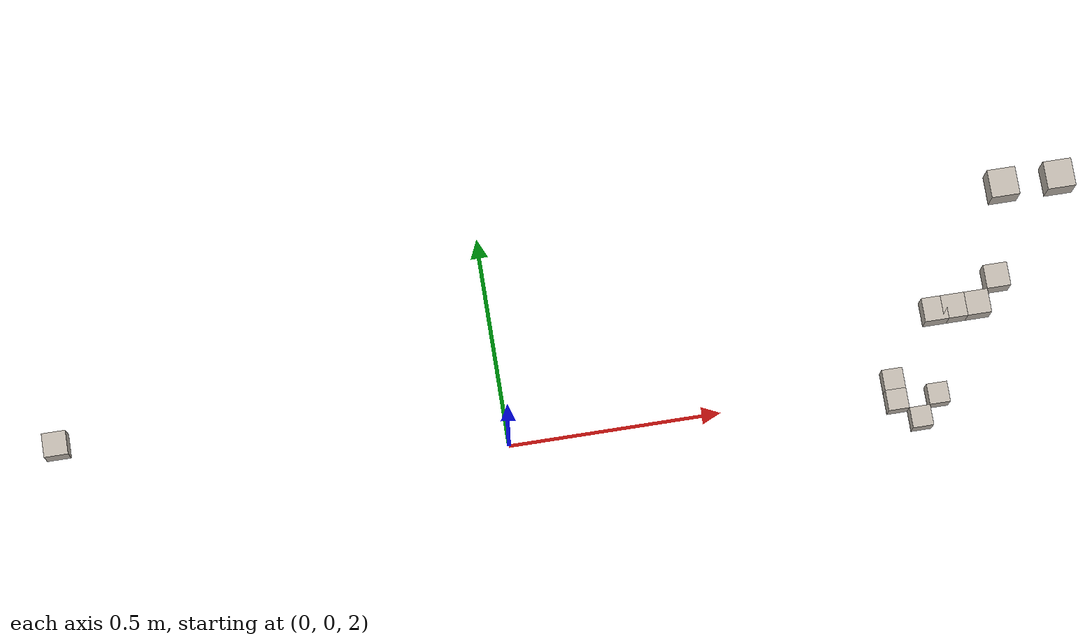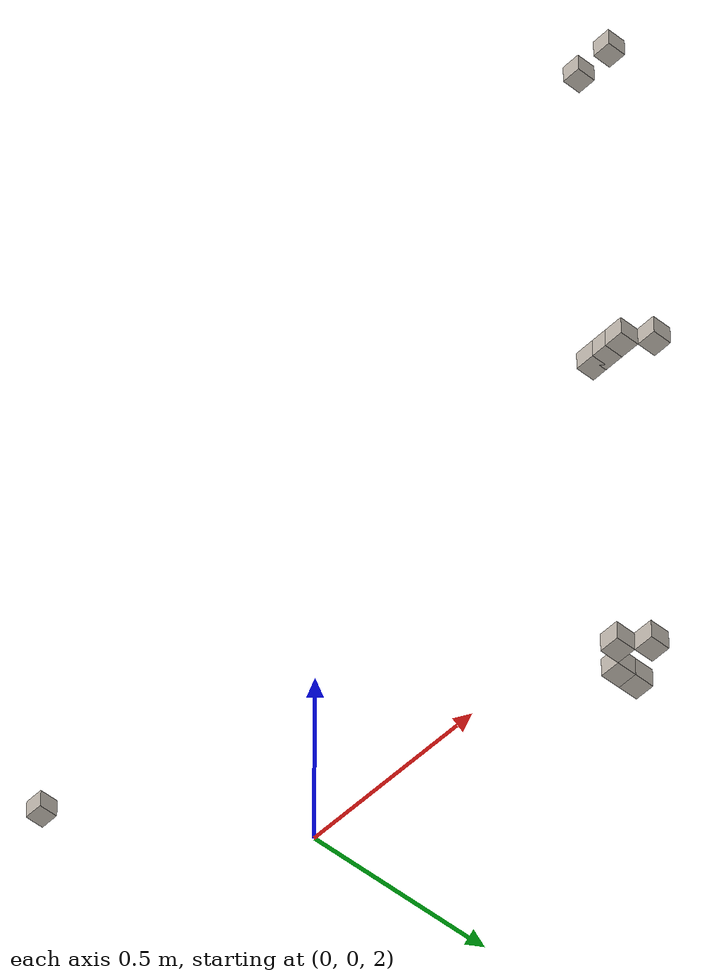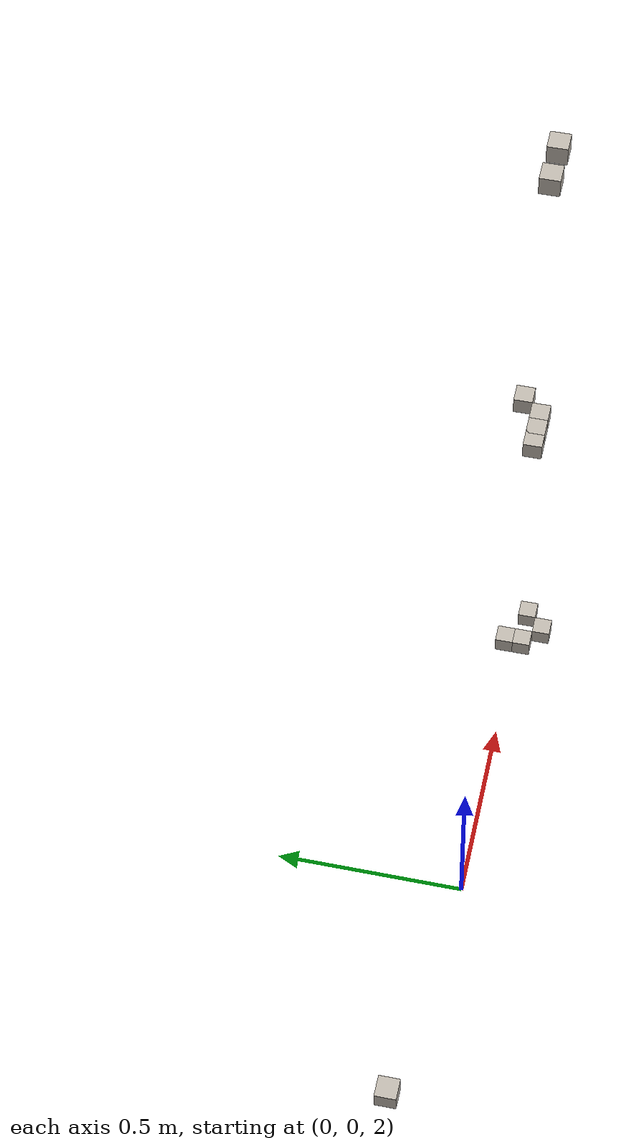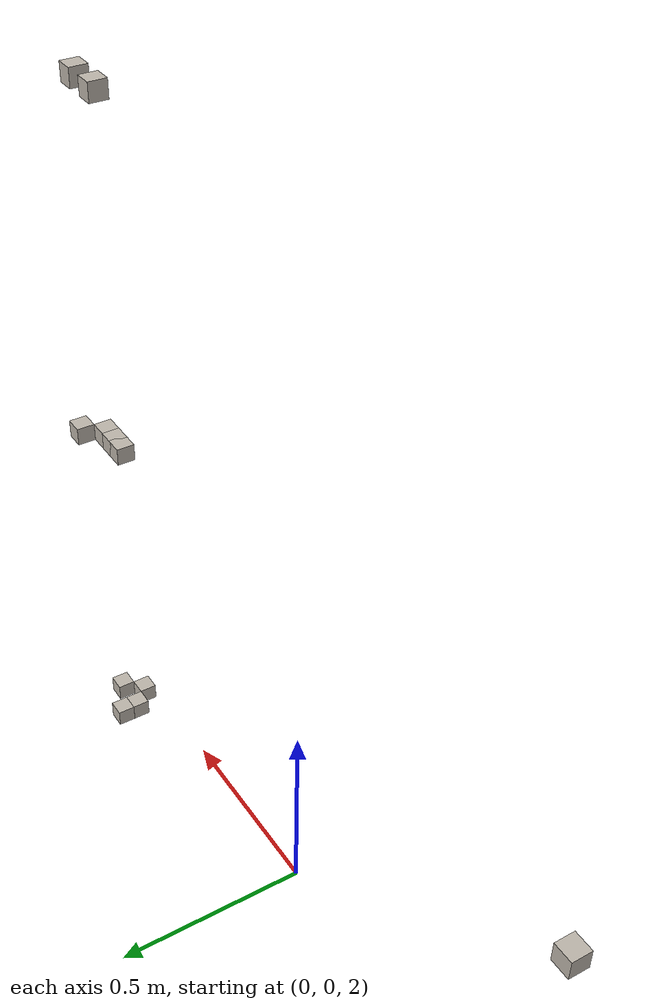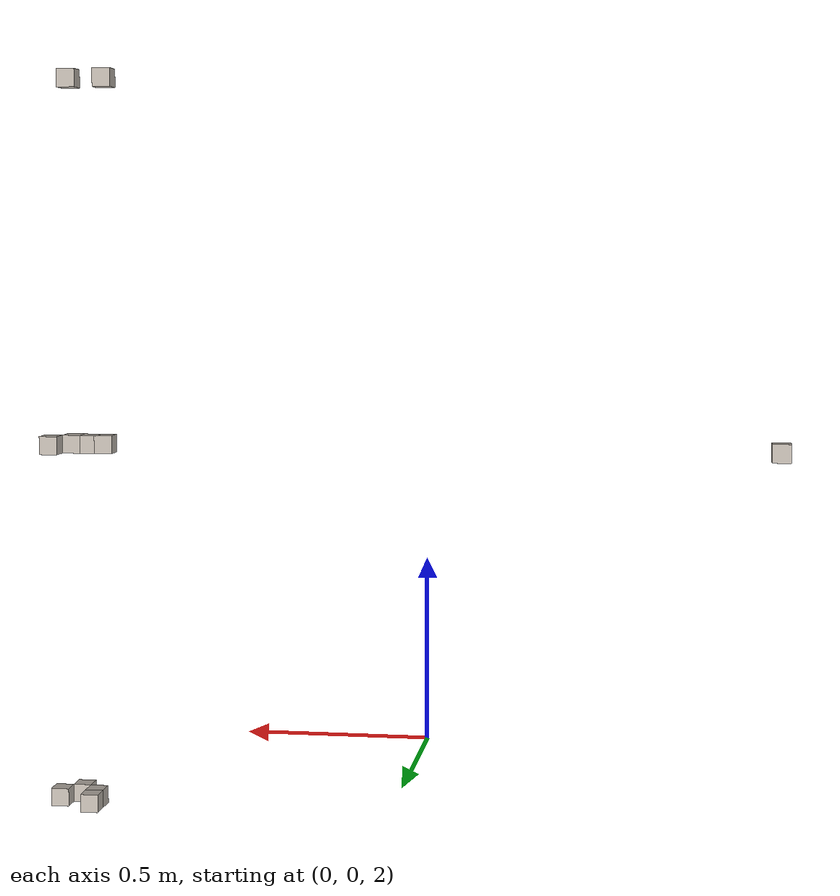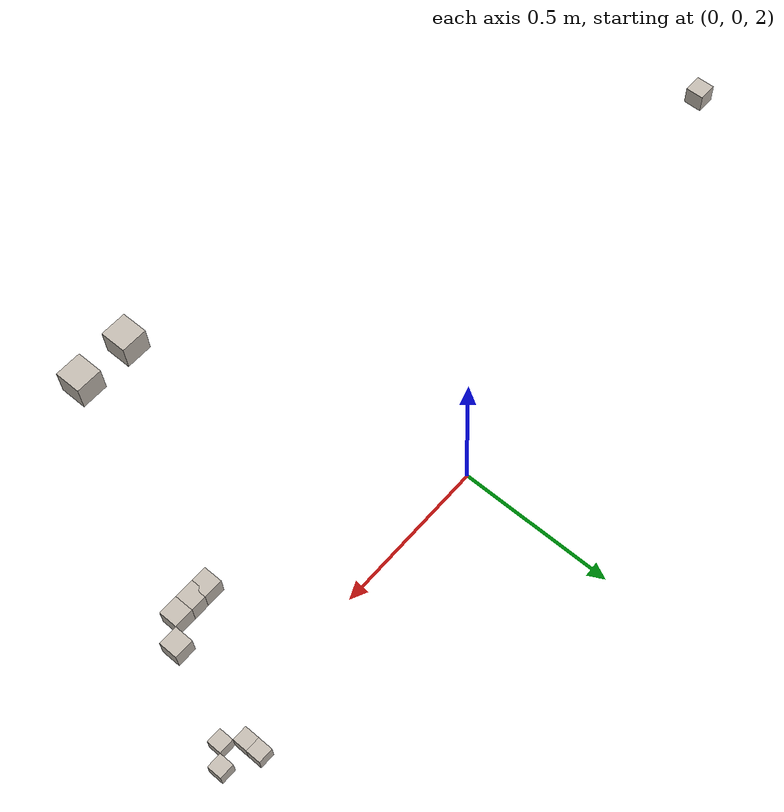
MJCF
<mujoco>
    <asset>
        <texture name="texture_block" file="./textures/block.png" gridsize="3 4" gridlayout=".U..LFRB.D.."></texture>
        <texture name="texture_block_red" file="./textures/block_red.png" gridsize="3 4" gridlayout=".U..LFRB.D.."></texture>
		<material name="block_mat" texture="texture_block" specular="0" shininess="0.5" reflectance="0"></material>
        <material name="block_mat_red" texture="texture_block_red" specular="0" shininess="0.5" reflectance="0"></material>
	</asset>

    <worldbody>
        <body name="object0" pos="0.94 0.05 1.8">
            <joint name="object0:joint" type="free" damping="0.1" limited="false"></joint>
            <geom size="0.025 0.025 0.025" type="box" solmix="0.01" solimp="0.0 0.01 0.0001" condim="3" name="object0" material="block_mat" mass="20"></geom>
            <site name="object0" pos="0 0 0" size="0.02 0.02 0.02" rgba="0.9 0.2 0 1" type="sphere"></site>
        </body>

        <body name="object1" pos="1.04 0.05 2.8">
            <joint name="object1:joint" type="free" damping="0.1" limited="false"></joint>
            <geom size="0.025 0.025 0.025" type="box" solmix="0.01" solimp="0.0 0.01 0.0001" condim="3" name="object1" material="block_mat" mass="20"></geom>
            <site name="object1" pos="0 0 0" size="0.02 0.02 0.02" rgba="0.9 0.2 0 1" type="sphere"></site>
        </body>

        <body name="object2" pos="0.99 -0.05 1.8">
            <joint name="object2:joint" type="free" damping="0.1" limited="false"></joint>
            <geom size="0.025 0.025 0.025" type="box" solmix="0.01" solimp="0.0 0.01 0.0001" condim="3" name="object2" material="block_mat" mass="20"></geom>
            <site name="object2" pos="0 0 0" size="0.02 0.02 0.02" rgba="0.9 0.2 0 1" type="sphere"></site>
        </body>

        <body name="object3" pos="0.99 -0.05 1.8">
            <joint name="object3:joint" type="free" damping="0.1" limited="false"></joint>
            <geom size="0.025 0.025 0.025" type="box" solmix="0.01" solimp="0.0 0.01 0.0001" condim="3" name="object3" material="block_mat" mass="20"></geom>
            <site name="object3" pos="0 0 0" size="0.02 0.02 0.02" rgba="0.9 0.2 0 1" type="sphere"></site>
        </body>

        <body name="object4" pos="1.04 0.0 1.8">
            <joint name="object4:joint" type="free" damping="0.1" limited="false"></joint>
            <geom size="0.025 0.025 0.025" type="box" solmix="0.01" solimp="0.0 0.01 0.0001" condim="3" name="object4" material="block_mat" mass="20"></geom>
            <site name="object4" pos="0 0 0" size="0.02 0.02 0.02" rgba="0.9 0.2 0 1" type="sphere"></site>
        </body>

        <body name="object5" pos="0.94 0.0 1.8">
            <joint name="object5:joint" type="free" damping="0.1" limited="false"></joint>
            <geom size="0.025 0.025 0.025" type="box" solmix="0.01" solimp="0.0 0.01 0.0001" condim="3" name="object5" material="block_mat" mass="20"></geom>
            <site name="object5" pos="0 0 0" size="0.02 0.02 0.02" rgba="0.9 0.2 0 1" type="sphere"></site>
        </body>

        <body name="object6" pos="-0.94 0.0 2.8">
            <joint name="object6:joint" type="free" damping="0.1" limited="false"></joint>
            <geom size="0.025 0.025 0.025" type="box" solmix="0.01" solimp="0.0 0.01 0.0001" condim="3" name="object6" material="block_mat" mass="20"></geom>
            <site name="object6" pos="0 0 0" size="0.02 0.02 0.02" rgba="0.9 0.2 0 1" type="sphere"></site>
        </body>

        <body name="object7" pos="0.90 0.0 2.8">
            <joint name="object7:joint" type="free" damping="0.1" limited="false"></joint>
            <geom size="0.025 0.025 0.025" type="box" solmix="0.01" solimp="0.0 0.01 0.0001" condim="3" name="object7" material="block_mat" mass="20"></geom>
            <site name="object7" pos="0 0 0" size="0.02 0.02 0.02" rgba="0.9 0.2 0 1" type="sphere"></site>
        </body>

        <body name="object9" pos="0.94 0.0 2.8">
            <joint name="object9:joint" type="free" damping="0.1" limited="false"></joint>
            <geom size="0.025 0.025 0.025" type="box" solmix="0.01" solimp="0.0 0.01 0.0001" condim="3" name="object9" material="block_mat" mass="20"></geom>
            <site name="object9" pos="0 0 0" size="0.02 0.02 0.02" rgba="0.9 0.2 0 1" type="sphere"></site>
        </body>

        <body name="object10" pos="0.99 0.0 2.8">
            <joint name="object10:joint" type="free" damping="0.1" limited="false"></joint>
            <geom size="0.025 0.025 0.025" type="box" solmix="0.01" solimp="0.0 0.01 0.0001" condim="3" name="object10" material="block_mat" mass="20"></geom>
            <site name="object10" pos="0 0 0" size="0.02 0.02 0.02" rgba="0.9 0.2 0 1" type="sphere"></site>
        </body>

         <body name="object8" pos="0.99 0.0 3.8">
            <joint name="object8:joint" type="free" damping="0.0" limited="false"></joint>
            <geom size="0.025 0.025 0.025"  solimp="0.0 0.01 0.0001"  type="box" solmix="0.01" condim="6" name="object8" material="block_mat" mass="20"></geom>
            <site name="object8" pos="0 0 0" size="0.02 0.02 0.02" rgba="0.9 0.2 0 1" type="sphere"></site>
        </body>

        <body name="object11" pos="0.89 0.00 3.8">
            <joint name="object11:joint" type="free" damping="0.0" limited="false"></joint>
            <geom size="0.025 0.025 0.025"  solimp="0.0 0.01 0.0001"  condim="6" type="box" solmix="0.01" name="object11" material="block_mat" mass="20"></geom>
            <site name="object11" pos="0 0 0" size="0.02 0.02 0.02" rgba="0.9 0.2 0 1" type="sphere"></site>
        </body>

    </worldbody>
</mujoco>
